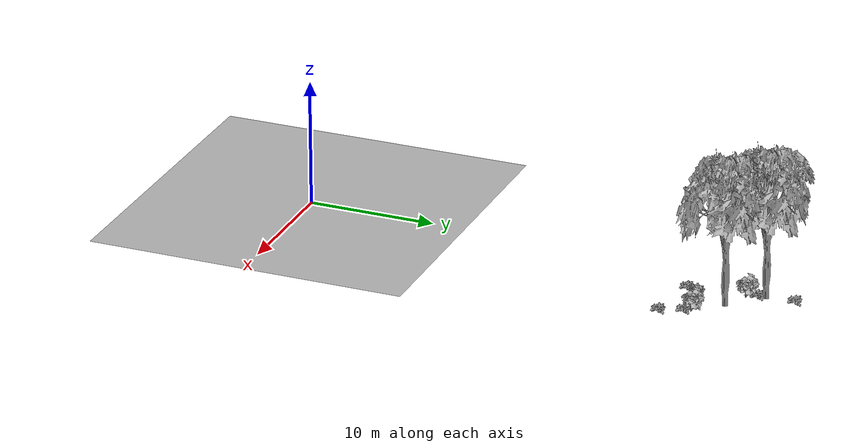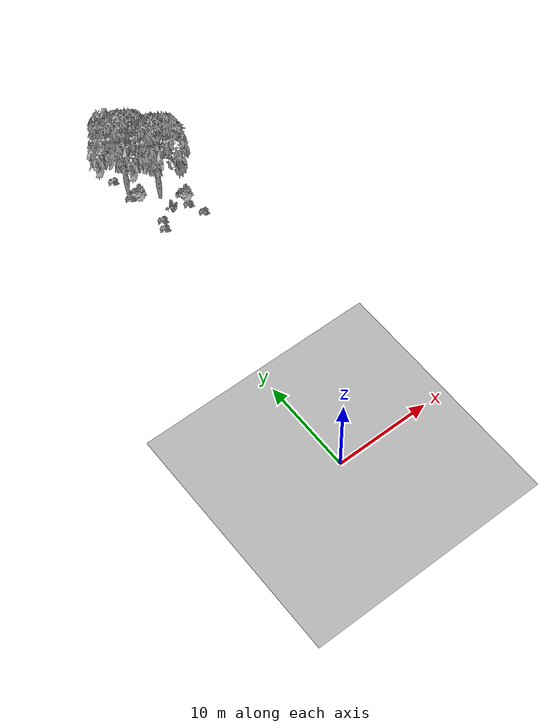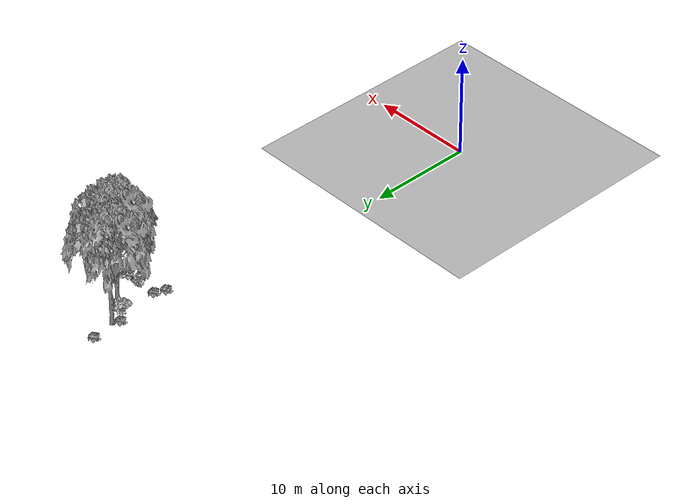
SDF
<sdf version="1.7">
 <world name="default">
  <model name="ground_plane">
   <static>1</static>
   <link name="link">
    <collision name="collision">
     <pose>-50 0 0 0 -0 0</pose>
     <geometry><plane><normal>0 0 1</normal><size>80 80</size></plane></geometry>
     <surface><contact><ode><min_depth>0.01</min_depth><max_vel>0</max_vel></ode></contact></surface>
    </collision>
    <visual name="grass">
     <cast_shadows>0</cast_shadows>
     <geometry>
      <mesh>
       <scale>0.46714285714285714 0.46714285714285714 0.1</scale>
       <uri>file://grass_plane/meshes/grass_plane.dae</uri>
      </mesh>
     </geometry>
    </visual>
   </link>
  </model>
  <model name="Tree 196">
   <static>1</static>
   <pose>2.626377974323148 37.49277574991146 0 1.57079 -0 0</pose>
   <link name="link">
    <collision name="collision">
     <geometry><mesh><scale>3.5 5 3.5</scale><uri>model://tree_2/meshes/tree_2.obj</uri></mesh></geometry>
    </collision>
    <visual name="visual">
     <geometry><mesh><scale>3.5 5 3.5</scale><uri>model://tree_2/meshes/tree_2.obj</uri></mesh></geometry>
    </visual>
   </link>
  </model>
  <model name="Tree 476">
   <static>1</static>
   <pose>4.930559992614505 35.12033504613407 0 1.57079 -0 0</pose>
   <link name="link">
    <collision name="collision">
     <geometry><mesh><scale>3.5 5 3.5</scale><uri>model://tree_2/meshes/tree_2.obj</uri></mesh></geometry>
    </collision>
    <visual name="visual">
     <geometry><mesh><scale>3.5 5 3.5</scale><uri>model://tree_2/meshes/tree_2.obj</uri></mesh></geometry>
    </visual>
   </link>
  </model>
  <model name="Bush 62">
   <static>1</static>
   <pose>6.8094026875385225 33.17868701202697 0 1.57079 -0 0</pose>
   <link name="link">
    <collision name="collision">
     <geometry><mesh><scale>2 2 2</scale><uri>model://bush_1/meshes/bush_1.obj</uri></mesh></geometry>
     <surface><contact><collide_without_contact>false</collide_without_contact></contact></surface>
    </collision>
    <visual name="visual">
     <geometry><mesh><scale>2 2 2</scale><uri>model://bush_1/meshes/bush_1.obj</uri></mesh></geometry>
    </visual>
   </link>
  </model>
  <model name="Bush 79">
   <static>1</static>
   <pose>2.4629958039177 36.76859262930222 0 1.57079 -0 0</pose>
   <link name="link">
    <collision name="collision">
     <geometry><mesh><scale>2 2 2</scale><uri>model://bush_2/meshes/bush_2.obj</uri></mesh></geometry>
     <surface><contact><collide_without_contact>false</collide_without_contact></contact></surface>
    </collision>
    <visual name="visual">
     <geometry><mesh><scale>2 2 2</scale><uri>model://bush_2/meshes/bush_2.obj</uri></mesh></geometry>
    </visual>
   </link>
  </model>
  <model name="Bush 143">
   <static>1</static>
   <pose>2.3392713742138085 39.628157434811584 0 1.57079 -0 0</pose>
   <link name="link">
    <collision name="collision">
     <geometry><mesh><scale>2 2 2</scale><uri>model://bush_2/meshes/bush_2.obj</uri></mesh></geometry>
     <surface><contact><collide_without_contact>false</collide_without_contact></contact></surface>
    </collision>
    <visual name="visual">
     <geometry><mesh><scale>2 2 2</scale><uri>model://bush_2/meshes/bush_2.obj</uri></mesh></geometry>
    </visual>
   </link>
  </model>
  <model name="Bush 150">
   <static>1</static>
   <pose>6.689347079674953 32.526501202688664 0 1.57079 -0 0</pose>
   <link name="link">
    <collision name="collision">
     <geometry><mesh><scale>2 2 2</scale><uri>model://bush_2/meshes/bush_2.obj</uri></mesh></geometry>
     <surface><contact><collide_without_contact>false</collide_without_contact></contact></surface>
    </collision>
    <visual name="visual">
     <geometry><mesh><scale>2 2 2</scale><uri>model://bush_2/meshes/bush_2.obj</uri></mesh></geometry>
    </visual>
   </link>
  </model>
  <model name="Bush 177">
   <static>1</static>
   <pose>7.339967355357508 30.813248949872104 0 1.57079 -0 0</pose>
   <link name="link">
    <collision name="collision">
     <geometry><mesh><scale>2 2 2</scale><uri>model://bush_2/meshes/bush_2.obj</uri></mesh></geometry>
     <surface><contact><collide_without_contact>false</collide_without_contact></contact></surface>
    </collision>
    <visual name="visual">
     <geometry><mesh><scale>2 2 2</scale><uri>model://bush_2/meshes/bush_2.obj</uri></mesh></geometry>
    </visual>
   </link>
  </model>
  <model name="Bush 390">
   <static>1</static>
   <pose>4.959193022109275 32.86142288248429 0 1.57079 -0 0</pose>
   <link name="link">
    <collision name="collision">
     <geometry><mesh><scale>2 2 2</scale><uri>model://bush_4/meshes/bush_4.obj</uri></mesh></geometry>
     <surface><contact><collide_without_contact>false</collide_without_contact></contact></surface>
    </collision>
    <visual name="visual">
     <geometry><mesh><scale>2 2 2</scale><uri>model://bush_4/meshes/bush_4.obj</uri></mesh></geometry>
    </visual>
   </link>
  </model>
  <model name="Bush 449">
   <static>1</static>
   <pose>3.111339609005725 36.09120624690645 0 1.57079 -0 0</pose>
   <link name="link">
    <collision name="collision">
     <geometry><mesh><scale>2 2 2</scale><uri>model://bush_1/meshes/bush_1.obj</uri></mesh></geometry>
     <surface><contact><collide_without_contact>false</collide_without_contact></contact></surface>
    </collision>
    <visual name="visual">
     <geometry><mesh><scale>2 2 2</scale><uri>model://bush_1/meshes/bush_1.obj</uri></mesh></geometry>
    </visual>
   </link>
  </model>
  <model name="Bush 615">
   <static>1</static>
   <pose>3.426174825980276 32.46952187672406 0 1.57079 -0 0</pose>
   <link name="link">
    <collision name="collision">
     <geometry><mesh><scale>2 2 2</scale><uri>model://bush_2/meshes/bush_2.obj</uri></mesh></geometry>
     <surface><contact><collide_without_contact>false</collide_without_contact></contact></surface>
    </collision>
    <visual name="visual">
     <geometry><mesh><scale>2 2 2</scale><uri>model://bush_2/meshes/bush_2.obj</uri></mesh></geometry>
    </visual>
   </link>
  </model>
  <model name="Bush 617">
   <static>1</static>
   <pose>2.9960598971825476 31.480993570277803 0 1.57079 -0 0</pose>
   <link name="link">
    <collision name="collision">
     <geometry><mesh><scale>2 2 2</scale><uri>model://bush_2/meshes/bush_2.obj</uri></mesh></geometry>
     <surface><contact><collide_without_contact>false</collide_without_contact></contact></surface>
    </collision>
    <visual name="visual">
     <geometry><mesh><scale>2 2 2</scale><uri>model://bush_2/meshes/bush_2.obj</uri></mesh></geometry>
    </visual>
   </link>
  </model>
 </world>
</sdf>
